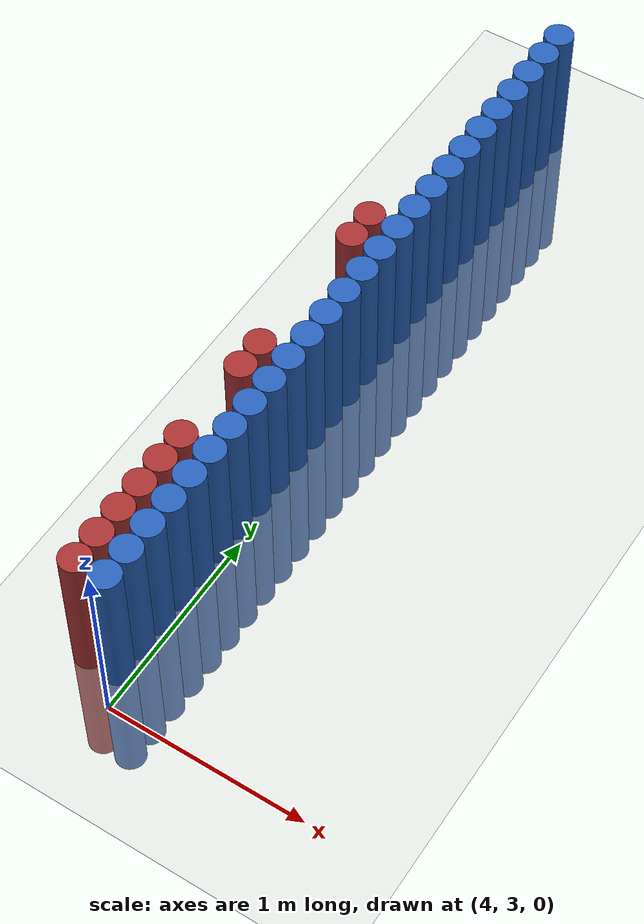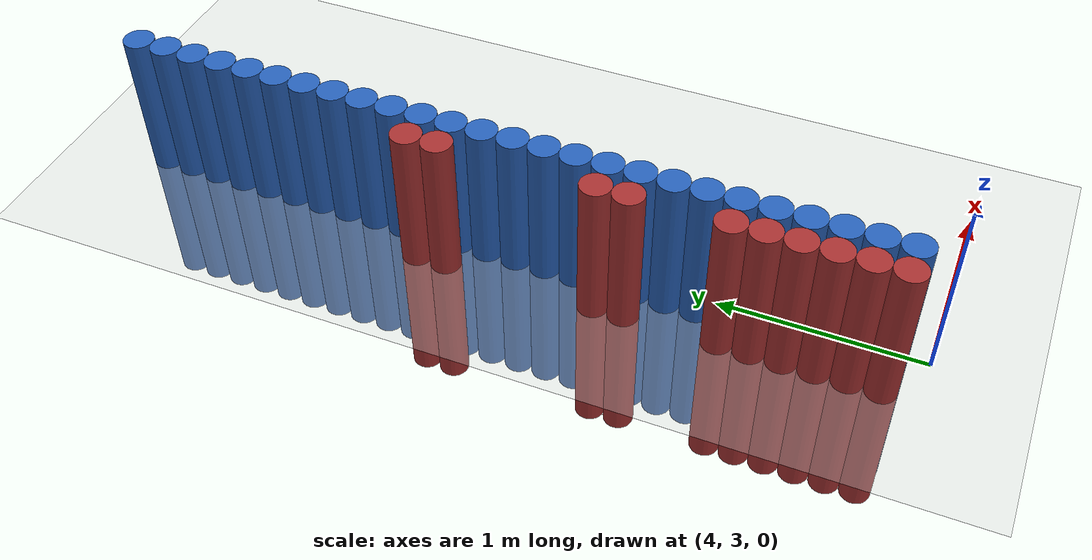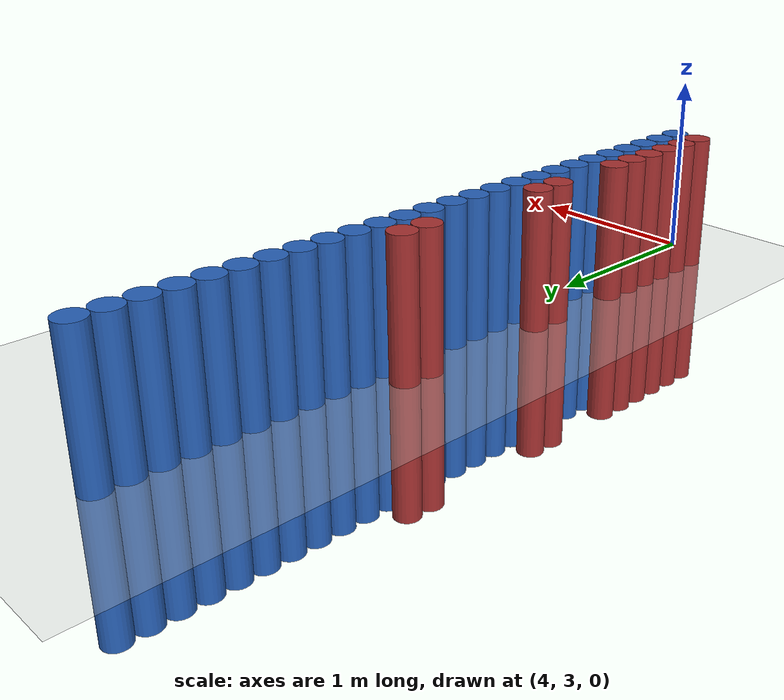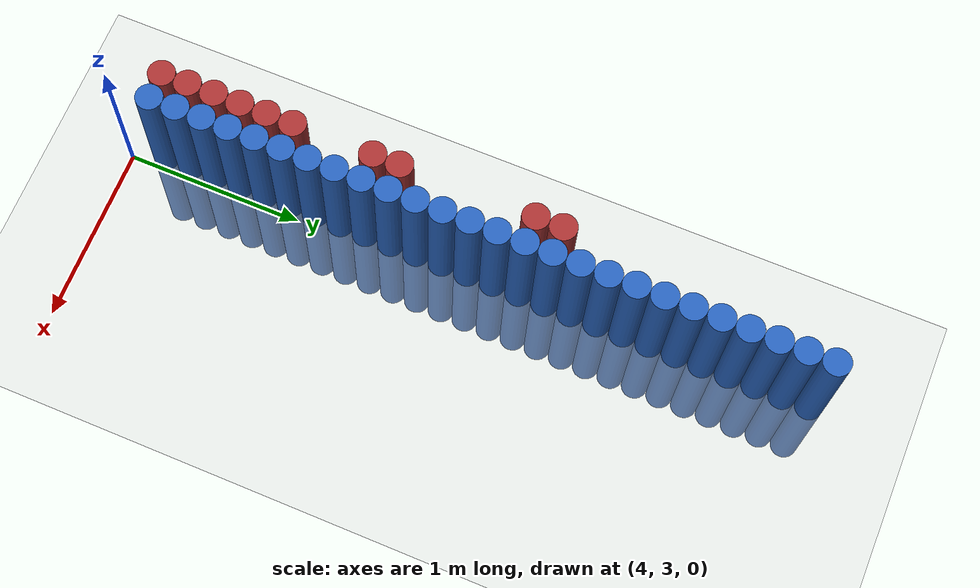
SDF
<sdf version="1.6">
 <world name="default">
  <model name="ground_plane">
   <static>1</static>
   <link name="link">
    <collision name="collision">
     <geometry><plane><normal>0 0 1</normal><size>100 100</size></plane></geometry>
     <surface><friction><ode><mu>100</mu><mu2>50</mu2></ode></friction></surface>
    </collision>
    <visual name="visual">
     <cast_shadows>0</cast_shadows>
     <geometry><plane><normal>0 0 1</normal><size>100 100</size></plane></geometry>
     <material>
      <script><uri>file://media/materials/scripts/gazebo.material</uri><name>Gazebo/Grey</name></script>
     </material>
    </visual>
   </link>
  </model>
  <model name="unit_cylinder_156">
   <static>1</static>
   <pose>3.925000 3.175000 0.000000 0.000000 0.000000 0.000000</pose>
   <link name="link">
    <inertial>
     <mass>1</mass>
     <inertia><ixx>0.145833</ixx><ixy>0</ixy><ixz>0</ixz><iyy>0.145833</iyy><iyz>0</iyz><izz>0.125</izz></inertia>
    </inertial>
    <collision name="collision">
     <geometry><cylinder><radius>0.075000</radius><length>1.5</length></cylinder></geometry>
    </collision>
    <visual name="visual">
     <geometry><cylinder><radius>0.075000</radius><length>1.5</length></cylinder></geometry>
     <material>
      <ambient>0.152000 0.379000 0.720000 1</ambient>
      <diffuse>0.152000 0.379000 0.720000 1</diffuse>
     </material>
     <material>
      <script><name>Gazebo/Grey</name><uri>file://media/materials/scripts/gazebo.material</uri></script>
     </material>
    </visual>
   </link>
  </model>
  <model name="unit_cylinder_158">
   <static>1</static>
   <pose>3.925000 3.325000 0.000000 0.000000 0.000000 0.000000</pose>
   <link name="link">
    <inertial>
     <mass>1</mass>
     <inertia><ixx>0.145833</ixx><ixy>0</ixy><ixz>0</ixz><iyy>0.145833</iyy><iyz>0</iyz><izz>0.125</izz></inertia>
    </inertial>
    <collision name="collision">
     <geometry><cylinder><radius>0.075000</radius><length>1.5</length></cylinder></geometry>
    </collision>
    <visual name="visual">
     <geometry><cylinder><radius>0.075000</radius><length>1.5</length></cylinder></geometry>
     <material>
      <ambient>0.152000 0.379000 0.720000 1</ambient>
      <diffuse>0.152000 0.379000 0.720000 1</diffuse>
     </material>
     <material>
      <script><name>Gazebo/Grey</name><uri>file://media/materials/scripts/gazebo.material</uri></script>
     </material>
    </visual>
   </link>
  </model>
  <model name="unit_cylinder_160">
   <static>1</static>
   <pose>3.925000 3.475000 0.000000 0.000000 0.000000 0.000000</pose>
   <link name="link">
    <inertial>
     <mass>1</mass>
     <inertia><ixx>0.145833</ixx><ixy>0</ixy><ixz>0</ixz><iyy>0.145833</iyy><iyz>0</iyz><izz>0.125</izz></inertia>
    </inertial>
    <collision name="collision">
     <geometry><cylinder><radius>0.075000</radius><length>1.5</length></cylinder></geometry>
    </collision>
    <visual name="visual">
     <geometry><cylinder><radius>0.075000</radius><length>1.5</length></cylinder></geometry>
     <material>
      <ambient>0.152000 0.379000 0.720000 1</ambient>
      <diffuse>0.152000 0.379000 0.720000 1</diffuse>
     </material>
     <material>
      <script><name>Gazebo/Grey</name><uri>file://media/materials/scripts/gazebo.material</uri></script>
     </material>
    </visual>
   </link>
  </model>
  <model name="unit_cylinder_162">
   <static>1</static>
   <pose>3.925000 3.625000 0.000000 0.000000 0.000000 0.000000</pose>
   <link name="link">
    <inertial>
     <mass>1</mass>
     <inertia><ixx>0.145833</ixx><ixy>0</ixy><ixz>0</ixz><iyy>0.145833</iyy><iyz>0</iyz><izz>0.125</izz></inertia>
    </inertial>
    <collision name="collision">
     <geometry><cylinder><radius>0.075000</radius><length>1.5</length></cylinder></geometry>
    </collision>
    <visual name="visual">
     <geometry><cylinder><radius>0.075000</radius><length>1.5</length></cylinder></geometry>
     <material>
      <ambient>0.152000 0.379000 0.720000 1</ambient>
      <diffuse>0.152000 0.379000 0.720000 1</diffuse>
     </material>
     <material>
      <script><name>Gazebo/Grey</name><uri>file://media/materials/scripts/gazebo.material</uri></script>
     </material>
    </visual>
   </link>
  </model>
  <model name="unit_cylinder_164">
   <static>1</static>
   <pose>3.925000 3.775000 0.000000 0.000000 0.000000 0.000000</pose>
   <link name="link">
    <inertial>
     <mass>1</mass>
     <inertia><ixx>0.145833</ixx><ixy>0</ixy><ixz>0</ixz><iyy>0.145833</iyy><iyz>0</iyz><izz>0.125</izz></inertia>
    </inertial>
    <collision name="collision">
     <geometry><cylinder><radius>0.075000</radius><length>1.5</length></cylinder></geometry>
    </collision>
    <visual name="visual">
     <geometry><cylinder><radius>0.075000</radius><length>1.5</length></cylinder></geometry>
     <material>
      <ambient>0.152000 0.379000 0.720000 1</ambient>
      <diffuse>0.152000 0.379000 0.720000 1</diffuse>
     </material>
     <material>
      <script><name>Gazebo/Grey</name><uri>file://media/materials/scripts/gazebo.material</uri></script>
     </material>
    </visual>
   </link>
  </model>
  <model name="unit_cylinder_166">
   <static>1</static>
   <pose>3.925000 3.925000 0.000000 0.000000 0.000000 0.000000</pose>
   <link name="link">
    <inertial>
     <mass>1</mass>
     <inertia><ixx>0.145833</ixx><ixy>0</ixy><ixz>0</ixz><iyy>0.145833</iyy><iyz>0</iyz><izz>0.125</izz></inertia>
    </inertial>
    <collision name="collision">
     <geometry><cylinder><radius>0.075000</radius><length>1.5</length></cylinder></geometry>
    </collision>
    <visual name="visual">
     <geometry><cylinder><radius>0.075000</radius><length>1.5</length></cylinder></geometry>
     <material>
      <ambient>0.152000 0.379000 0.720000 1</ambient>
      <diffuse>0.152000 0.379000 0.720000 1</diffuse>
     </material>
     <material>
      <script><name>Gazebo/Grey</name><uri>file://media/materials/scripts/gazebo.material</uri></script>
     </material>
    </visual>
   </link>
  </model>
  <model name="unit_cylinder_168">
   <static>1</static>
   <pose>3.925000 4.075000 0.000000 0.000000 0.000000 0.000000</pose>
   <link name="link">
    <inertial>
     <mass>1</mass>
     <inertia><ixx>0.145833</ixx><ixy>0</ixy><ixz>0</ixz><iyy>0.145833</iyy><iyz>0</iyz><izz>0.125</izz></inertia>
    </inertial>
    <collision name="collision">
     <geometry><cylinder><radius>0.075000</radius><length>1.5</length></cylinder></geometry>
    </collision>
    <visual name="visual">
     <geometry><cylinder><radius>0.075000</radius><length>1.5</length></cylinder></geometry>
     <material>
      <ambient>0.152000 0.379000 0.720000 1</ambient>
      <diffuse>0.152000 0.379000 0.720000 1</diffuse>
     </material>
     <material>
      <script><name>Gazebo/Grey</name><uri>file://media/materials/scripts/gazebo.material</uri></script>
     </material>
    </visual>
   </link>
  </model>
  <model name="unit_cylinder_170">
   <static>1</static>
   <pose>3.925000 4.225000 0.000000 0.000000 0.000000 0.000000</pose>
   <link name="link">
    <inertial>
     <mass>1</mass>
     <inertia><ixx>0.145833</ixx><ixy>0</ixy><ixz>0</ixz><iyy>0.145833</iyy><iyz>0</iyz><izz>0.125</izz></inertia>
    </inertial>
    <collision name="collision">
     <geometry><cylinder><radius>0.075000</radius><length>1.5</length></cylinder></geometry>
    </collision>
    <visual name="visual">
     <geometry><cylinder><radius>0.075000</radius><length>1.5</length></cylinder></geometry>
     <material>
      <ambient>0.152000 0.379000 0.720000 1</ambient>
      <diffuse>0.152000 0.379000 0.720000 1</diffuse>
     </material>
     <material>
      <script><name>Gazebo/Grey</name><uri>file://media/materials/scripts/gazebo.material</uri></script>
     </material>
    </visual>
   </link>
  </model>
  <model name="unit_cylinder_172">
   <static>1</static>
   <pose>3.925000 4.375000 0.000000 0.000000 0.000000 0.000000</pose>
   <link name="link">
    <inertial>
     <mass>1</mass>
     <inertia><ixx>0.145833</ixx><ixy>0</ixy><ixz>0</ixz><iyy>0.145833</iyy><iyz>0</iyz><izz>0.125</izz></inertia>
    </inertial>
    <collision name="collision">
     <geometry><cylinder><radius>0.075000</radius><length>1.5</length></cylinder></geometry>
    </collision>
    <visual name="visual">
     <geometry><cylinder><radius>0.075000</radius><length>1.5</length></cylinder></geometry>
     <material>
      <ambient>0.152000 0.379000 0.720000 1</ambient>
      <diffuse>0.152000 0.379000 0.720000 1</diffuse>
     </material>
     <material>
      <script><name>Gazebo/Grey</name><uri>file://media/materials/scripts/gazebo.material</uri></script>
     </material>
    </visual>
   </link>
  </model>
  <model name="unit_cylinder_174">
   <static>1</static>
   <pose>3.925000 4.525000 0.000000 0.000000 0.000000 0.000000</pose>
   <link name="link">
    <inertial>
     <mass>1</mass>
     <inertia><ixx>0.145833</ixx><ixy>0</ixy><ixz>0</ixz><iyy>0.145833</iyy><iyz>0</iyz><izz>0.125</izz></inertia>
    </inertial>
    <collision name="collision">
     <geometry><cylinder><radius>0.075000</radius><length>1.5</length></cylinder></geometry>
    </collision>
    <visual name="visual">
     <geometry><cylinder><radius>0.075000</radius><length>1.5</length></cylinder></geometry>
     <material>
      <ambient>0.152000 0.379000 0.720000 1</ambient>
      <diffuse>0.152000 0.379000 0.720000 1</diffuse>
     </material>
     <material>
      <script><name>Gazebo/Grey</name><uri>file://media/materials/scripts/gazebo.material</uri></script>
     </material>
    </visual>
   </link>
  </model>
  <model name="unit_cylinder_176">
   <static>1</static>
   <pose>3.925000 4.675000 0.000000 0.000000 0.000000 0.000000</pose>
   <link name="link">
    <inertial>
     <mass>1</mass>
     <inertia><ixx>0.145833</ixx><ixy>0</ixy><ixz>0</ixz><iyy>0.145833</iyy><iyz>0</iyz><izz>0.125</izz></inertia>
    </inertial>
    <collision name="collision">
     <geometry><cylinder><radius>0.075000</radius><length>1.5</length></cylinder></geometry>
    </collision>
    <visual name="visual">
     <geometry><cylinder><radius>0.075000</radius><length>1.5</length></cylinder></geometry>
     <material>
      <ambient>0.152000 0.379000 0.720000 1</ambient>
      <diffuse>0.152000 0.379000 0.720000 1</diffuse>
     </material>
     <material>
      <script><name>Gazebo/Grey</name><uri>file://media/materials/scripts/gazebo.material</uri></script>
     </material>
    </visual>
   </link>
  </model>
  <model name="unit_cylinder_178">
   <static>1</static>
   <pose>3.925000 4.825000 0.000000 0.000000 0.000000 0.000000</pose>
   <link name="link">
    <inertial>
     <mass>1</mass>
     <inertia><ixx>0.145833</ixx><ixy>0</ixy><ixz>0</ixz><iyy>0.145833</iyy><iyz>0</iyz><izz>0.125</izz></inertia>
    </inertial>
    <collision name="collision">
     <geometry><cylinder><radius>0.075000</radius><length>1.5</length></cylinder></geometry>
    </collision>
    <visual name="visual">
     <geometry><cylinder><radius>0.075000</radius><length>1.5</length></cylinder></geometry>
     <material>
      <ambient>0.152000 0.379000 0.720000 1</ambient>
      <diffuse>0.152000 0.379000 0.720000 1</diffuse>
     </material>
     <material>
      <script><name>Gazebo/Grey</name><uri>file://media/materials/scripts/gazebo.material</uri></script>
     </material>
    </visual>
   </link>
  </model>
  <model name="unit_cylinder_180">
   <static>1</static>
   <pose>3.925000 4.975000 0.000000 0.000000 0.000000 0.000000</pose>
   <link name="link">
    <inertial>
     <mass>1</mass>
     <inertia><ixx>0.145833</ixx><ixy>0</ixy><ixz>0</ixz><iyy>0.145833</iyy><iyz>0</iyz><izz>0.125</izz></inertia>
    </inertial>
    <collision name="collision">
     <geometry><cylinder><radius>0.075000</radius><length>1.5</length></cylinder></geometry>
    </collision>
    <visual name="visual">
     <geometry><cylinder><radius>0.075000</radius><length>1.5</length></cylinder></geometry>
     <material>
      <ambient>0.152000 0.379000 0.720000 1</ambient>
      <diffuse>0.152000 0.379000 0.720000 1</diffuse>
     </material>
     <material>
      <script><name>Gazebo/Grey</name><uri>file://media/materials/scripts/gazebo.material</uri></script>
     </material>
    </visual>
   </link>
  </model>
  <model name="unit_cylinder_182">
   <static>1</static>
   <pose>3.925000 5.125000 0.000000 0.000000 0.000000 0.000000</pose>
   <link name="link">
    <inertial>
     <mass>1</mass>
     <inertia><ixx>0.145833</ixx><ixy>0</ixy><ixz>0</ixz><iyy>0.145833</iyy><iyz>0</iyz><izz>0.125</izz></inertia>
    </inertial>
    <collision name="collision">
     <geometry><cylinder><radius>0.075000</radius><length>1.5</length></cylinder></geometry>
    </collision>
    <visual name="visual">
     <geometry><cylinder><radius>0.075000</radius><length>1.5</length></cylinder></geometry>
     <material>
      <ambient>0.152000 0.379000 0.720000 1</ambient>
      <diffuse>0.152000 0.379000 0.720000 1</diffuse>
     </material>
     <material>
      <script><name>Gazebo/Grey</name><uri>file://media/materials/scripts/gazebo.material</uri></script>
     </material>
    </visual>
   </link>
  </model>
  <model name="unit_cylinder_184">
   <static>1</static>
   <pose>3.925000 5.275000 0.000000 0.000000 0.000000 0.000000</pose>
   <link name="link">
    <inertial>
     <mass>1</mass>
     <inertia><ixx>0.145833</ixx><ixy>0</ixy><ixz>0</ixz><iyy>0.145833</iyy><iyz>0</iyz><izz>0.125</izz></inertia>
    </inertial>
    <collision name="collision">
     <geometry><cylinder><radius>0.075000</radius><length>1.5</length></cylinder></geometry>
    </collision>
    <visual name="visual">
     <geometry><cylinder><radius>0.075000</radius><length>1.5</length></cylinder></geometry>
     <material>
      <ambient>0.152000 0.379000 0.720000 1</ambient>
      <diffuse>0.152000 0.379000 0.720000 1</diffuse>
     </material>
     <material>
      <script><name>Gazebo/Grey</name><uri>file://media/materials/scripts/gazebo.material</uri></script>
     </material>
    </visual>
   </link>
  </model>
  <model name="unit_cylinder_186">
   <static>1</static>
   <pose>3.925000 5.425000 0.000000 0.000000 0.000000 0.000000</pose>
   <link name="link">
    <inertial>
     <mass>1</mass>
     <inertia><ixx>0.145833</ixx><ixy>0</ixy><ixz>0</ixz><iyy>0.145833</iyy><iyz>0</iyz><izz>0.125</izz></inertia>
    </inertial>
    <collision name="collision">
     <geometry><cylinder><radius>0.075000</radius><length>1.5</length></cylinder></geometry>
    </collision>
    <visual name="visual">
     <geometry><cylinder><radius>0.075000</radius><length>1.5</length></cylinder></geometry>
     <material>
      <ambient>0.152000 0.379000 0.720000 1</ambient>
      <diffuse>0.152000 0.379000 0.720000 1</diffuse>
     </material>
     <material>
      <script><name>Gazebo/Grey</name><uri>file://media/materials/scripts/gazebo.material</uri></script>
     </material>
    </visual>
   </link>
  </model>
  <model name="unit_cylinder_188">
   <static>1</static>
   <pose>3.925000 5.575000 0.000000 0.000000 0.000000 0.000000</pose>
   <link name="link">
    <inertial>
     <mass>1</mass>
     <inertia><ixx>0.145833</ixx><ixy>0</ixy><ixz>0</ixz><iyy>0.145833</iyy><iyz>0</iyz><izz>0.125</izz></inertia>
    </inertial>
    <collision name="collision">
     <geometry><cylinder><radius>0.075000</radius><length>1.5</length></cylinder></geometry>
    </collision>
    <visual name="visual">
     <geometry><cylinder><radius>0.075000</radius><length>1.5</length></cylinder></geometry>
     <material>
      <ambient>0.152000 0.379000 0.720000 1</ambient>
      <diffuse>0.152000 0.379000 0.720000 1</diffuse>
     </material>
     <material>
      <script><name>Gazebo/Grey</name><uri>file://media/materials/scripts/gazebo.material</uri></script>
     </material>
    </visual>
   </link>
  </model>
  <model name="unit_cylinder_190">
   <static>1</static>
   <pose>3.925000 5.725000 0.000000 0.000000 0.000000 0.000000</pose>
   <link name="link">
    <inertial>
     <mass>1</mass>
     <inertia><ixx>0.145833</ixx><ixy>0</ixy><ixz>0</ixz><iyy>0.145833</iyy><iyz>0</iyz><izz>0.125</izz></inertia>
    </inertial>
    <collision name="collision">
     <geometry><cylinder><radius>0.075000</radius><length>1.5</length></cylinder></geometry>
    </collision>
    <visual name="visual">
     <geometry><cylinder><radius>0.075000</radius><length>1.5</length></cylinder></geometry>
     <material>
      <ambient>0.152000 0.379000 0.720000 1</ambient>
      <diffuse>0.152000 0.379000 0.720000 1</diffuse>
     </material>
     <material>
      <script><name>Gazebo/Grey</name><uri>file://media/materials/scripts/gazebo.material</uri></script>
     </material>
    </visual>
   </link>
  </model>
  <model name="unit_cylinder_192">
   <static>1</static>
   <pose>3.925000 5.875000 0.000000 0.000000 0.000000 0.000000</pose>
   <link name="link">
    <inertial>
     <mass>1</mass>
     <inertia><ixx>0.145833</ixx><ixy>0</ixy><ixz>0</ixz><iyy>0.145833</iyy><iyz>0</iyz><izz>0.125</izz></inertia>
    </inertial>
    <collision name="collision">
     <geometry><cylinder><radius>0.075000</radius><length>1.5</length></cylinder></geometry>
    </collision>
    <visual name="visual">
     <geometry><cylinder><radius>0.075000</radius><length>1.5</length></cylinder></geometry>
     <material>
      <ambient>0.152000 0.379000 0.720000 1</ambient>
      <diffuse>0.152000 0.379000 0.720000 1</diffuse>
     </material>
     <material>
      <script><name>Gazebo/Grey</name><uri>file://media/materials/scripts/gazebo.material</uri></script>
     </material>
    </visual>
   </link>
  </model>
  <model name="unit_cylinder_194">
   <static>1</static>
   <pose>3.925000 6.025000 0.000000 0.000000 0.000000 0.000000</pose>
   <link name="link">
    <inertial>
     <mass>1</mass>
     <inertia><ixx>0.145833</ixx><ixy>0</ixy><ixz>0</ixz><iyy>0.145833</iyy><iyz>0</iyz><izz>0.125</izz></inertia>
    </inertial>
    <collision name="collision">
     <geometry><cylinder><radius>0.075000</radius><length>1.5</length></cylinder></geometry>
    </collision>
    <visual name="visual">
     <geometry><cylinder><radius>0.075000</radius><length>1.5</length></cylinder></geometry>
     <material>
      <ambient>0.152000 0.379000 0.720000 1</ambient>
      <diffuse>0.152000 0.379000 0.720000 1</diffuse>
     </material>
     <material>
      <script><name>Gazebo/Grey</name><uri>file://media/materials/scripts/gazebo.material</uri></script>
     </material>
    </visual>
   </link>
  </model>
  <model name="unit_cylinder_196">
   <static>1</static>
   <pose>3.925000 6.175000 0.000000 0.000000 0.000000 0.000000</pose>
   <link name="link">
    <inertial>
     <mass>1</mass>
     <inertia><ixx>0.145833</ixx><ixy>0</ixy><ixz>0</ixz><iyy>0.145833</iyy><iyz>0</iyz><izz>0.125</izz></inertia>
    </inertial>
    <collision name="collision">
     <geometry><cylinder><radius>0.075000</radius><length>1.5</length></cylinder></geometry>
    </collision>
    <visual name="visual">
     <geometry><cylinder><radius>0.075000</radius><length>1.5</length></cylinder></geometry>
     <material>
      <ambient>0.152000 0.379000 0.720000 1</ambient>
      <diffuse>0.152000 0.379000 0.720000 1</diffuse>
     </material>
     <material>
      <script><name>Gazebo/Grey</name><uri>file://media/materials/scripts/gazebo.material</uri></script>
     </material>
    </visual>
   </link>
  </model>
  <model name="unit_cylinder_198">
   <static>1</static>
   <pose>3.925000 6.325000 0.000000 0.000000 0.000000 0.000000</pose>
   <link name="link">
    <inertial>
     <mass>1</mass>
     <inertia><ixx>0.145833</ixx><ixy>0</ixy><ixz>0</ixz><iyy>0.145833</iyy><iyz>0</iyz><izz>0.125</izz></inertia>
    </inertial>
    <collision name="collision">
     <geometry><cylinder><radius>0.075000</radius><length>1.5</length></cylinder></geometry>
    </collision>
    <visual name="visual">
     <geometry><cylinder><radius>0.075000</radius><length>1.5</length></cylinder></geometry>
     <material>
      <ambient>0.152000 0.379000 0.720000 1</ambient>
      <diffuse>0.152000 0.379000 0.720000 1</diffuse>
     </material>
     <material>
      <script><name>Gazebo/Grey</name><uri>file://media/materials/scripts/gazebo.material</uri></script>
     </material>
    </visual>
   </link>
  </model>
  <model name="unit_cylinder_200">
   <static>1</static>
   <pose>3.925000 6.475000 0.000000 0.000000 0.000000 0.000000</pose>
   <link name="link">
    <inertial>
     <mass>1</mass>
     <inertia><ixx>0.145833</ixx><ixy>0</ixy><ixz>0</ixz><iyy>0.145833</iyy><iyz>0</iyz><izz>0.125</izz></inertia>
    </inertial>
    <collision name="collision">
     <geometry><cylinder><radius>0.075000</radius><length>1.5</length></cylinder></geometry>
    </collision>
    <visual name="visual">
     <geometry><cylinder><radius>0.075000</radius><length>1.5</length></cylinder></geometry>
     <material>
      <ambient>0.152000 0.379000 0.720000 1</ambient>
      <diffuse>0.152000 0.379000 0.720000 1</diffuse>
     </material>
     <material>
      <script><name>Gazebo/Grey</name><uri>file://media/materials/scripts/gazebo.material</uri></script>
     </material>
    </visual>
   </link>
  </model>
  <model name="unit_cylinder_202">
   <static>1</static>
   <pose>3.925000 6.625000 0.000000 0.000000 0.000000 0.000000</pose>
   <link name="link">
    <inertial>
     <mass>1</mass>
     <inertia><ixx>0.145833</ixx><ixy>0</ixy><ixz>0</ixz><iyy>0.145833</iyy><iyz>0</iyz><izz>0.125</izz></inertia>
    </inertial>
    <collision name="collision">
     <geometry><cylinder><radius>0.075000</radius><length>1.5</length></cylinder></geometry>
    </collision>
    <visual name="visual">
     <geometry><cylinder><radius>0.075000</radius><length>1.5</length></cylinder></geometry>
     <material>
      <ambient>0.152000 0.379000 0.720000 1</ambient>
      <diffuse>0.152000 0.379000 0.720000 1</diffuse>
     </material>
     <material>
      <script><name>Gazebo/Grey</name><uri>file://media/materials/scripts/gazebo.material</uri></script>
     </material>
    </visual>
   </link>
  </model>
  <model name="unit_cylinder_204">
   <static>1</static>
   <pose>3.925000 6.775000 0.000000 0.000000 0.000000 0.000000</pose>
   <link name="link">
    <inertial>
     <mass>1</mass>
     <inertia><ixx>0.145833</ixx><ixy>0</ixy><ixz>0</ixz><iyy>0.145833</iyy><iyz>0</iyz><izz>0.125</izz></inertia>
    </inertial>
    <collision name="collision">
     <geometry><cylinder><radius>0.075000</radius><length>1.5</length></cylinder></geometry>
    </collision>
    <visual name="visual">
     <geometry><cylinder><radius>0.075000</radius><length>1.5</length></cylinder></geometry>
     <material>
      <ambient>0.152000 0.379000 0.720000 1</ambient>
      <diffuse>0.152000 0.379000 0.720000 1</diffuse>
     </material>
     <material>
      <script><name>Gazebo/Grey</name><uri>file://media/materials/scripts/gazebo.material</uri></script>
     </material>
    </visual>
   </link>
  </model>
  <model name="unit_cylinder_206">
   <static>1</static>
   <pose>3.925000 6.925000 0.000000 0.000000 0.000000 0.000000</pose>
   <link name="link">
    <inertial>
     <mass>1</mass>
     <inertia><ixx>0.145833</ixx><ixy>0</ixy><ixz>0</ixz><iyy>0.145833</iyy><iyz>0</iyz><izz>0.125</izz></inertia>
    </inertial>
    <collision name="collision">
     <geometry><cylinder><radius>0.075000</radius><length>1.5</length></cylinder></geometry>
    </collision>
    <visual name="visual">
     <geometry><cylinder><radius>0.075000</radius><length>1.5</length></cylinder></geometry>
     <material>
      <ambient>0.152000 0.379000 0.720000 1</ambient>
      <diffuse>0.152000 0.379000 0.720000 1</diffuse>
     </material>
     <material>
      <script><name>Gazebo/Grey</name><uri>file://media/materials/scripts/gazebo.material</uri></script>
     </material>
    </visual>
   </link>
  </model>
  <model name="unit_cylinder_556">
   <static>1</static>
   <pose>3.775000 3.175000 0.000000 0.000000 0.000000 0.000000</pose>
   <link name="link">
    <inertial>
     <mass>1</mass>
     <inertia><ixx>0.145833</ixx><ixy>0</ixy><ixz>0</ixz><iyy>0.145833</iyy><iyz>0</iyz><izz>0.125</izz></inertia>
    </inertial>
    <collision name="collision">
     <geometry><cylinder><radius>0.075000</radius><length>1.5</length></cylinder></geometry>
    </collision>
    <visual name="visual">
     <geometry><cylinder><radius>0.075000</radius><length>1.5</length></cylinder></geometry>
     <material>
      <ambient>0.648000 0.192000 0.192000 1</ambient>
      <diffuse>0.648000 0.192000 0.192000 1</diffuse>
     </material>
     <material>
      <script><name>Gazebo/Grey</name><uri>file://media/materials/scripts/gazebo.material</uri></script>
     </material>
    </visual>
   </link>
  </model>
  <model name="unit_cylinder_557">
   <static>1</static>
   <pose>3.775000 3.325000 0.000000 0.000000 0.000000 0.000000</pose>
   <link name="link">
    <inertial>
     <mass>1</mass>
     <inertia><ixx>0.145833</ixx><ixy>0</ixy><ixz>0</ixz><iyy>0.145833</iyy><iyz>0</iyz><izz>0.125</izz></inertia>
    </inertial>
    <collision name="collision">
     <geometry><cylinder><radius>0.075000</radius><length>1.5</length></cylinder></geometry>
    </collision>
    <visual name="visual">
     <geometry><cylinder><radius>0.075000</radius><length>1.5</length></cylinder></geometry>
     <material>
      <ambient>0.648000 0.192000 0.192000 1</ambient>
      <diffuse>0.648000 0.192000 0.192000 1</diffuse>
     </material>
     <material>
      <script><name>Gazebo/Grey</name><uri>file://media/materials/scripts/gazebo.material</uri></script>
     </material>
    </visual>
   </link>
  </model>
  <model name="unit_cylinder_558">
   <static>1</static>
   <pose>3.775000 3.475000 0.000000 0.000000 0.000000 0.000000</pose>
   <link name="link">
    <inertial>
     <mass>1</mass>
     <inertia><ixx>0.145833</ixx><ixy>0</ixy><ixz>0</ixz><iyy>0.145833</iyy><iyz>0</iyz><izz>0.125</izz></inertia>
    </inertial>
    <collision name="collision">
     <geometry><cylinder><radius>0.075000</radius><length>1.5</length></cylinder></geometry>
    </collision>
    <visual name="visual">
     <geometry><cylinder><radius>0.075000</radius><length>1.5</length></cylinder></geometry>
     <material>
      <ambient>0.648000 0.192000 0.192000 1</ambient>
      <diffuse>0.648000 0.192000 0.192000 1</diffuse>
     </material>
     <material>
      <script><name>Gazebo/Grey</name><uri>file://media/materials/scripts/gazebo.material</uri></script>
     </material>
    </visual>
   </link>
  </model>
  <model name="unit_cylinder_559">
   <static>1</static>
   <pose>3.775000 3.625000 0.000000 0.000000 0.000000 0.000000</pose>
   <link name="link">
    <inertial>
     <mass>1</mass>
     <inertia><ixx>0.145833</ixx><ixy>0</ixy><ixz>0</ixz><iyy>0.145833</iyy><iyz>0</iyz><izz>0.125</izz></inertia>
    </inertial>
    <collision name="collision">
     <geometry><cylinder><radius>0.075000</radius><length>1.5</length></cylinder></geometry>
    </collision>
    <visual name="visual">
     <geometry><cylinder><radius>0.075000</radius><length>1.5</length></cylinder></geometry>
     <material>
      <ambient>0.648000 0.192000 0.192000 1</ambient>
      <diffuse>0.648000 0.192000 0.192000 1</diffuse>
     </material>
     <material>
      <script><name>Gazebo/Grey</name><uri>file://media/materials/scripts/gazebo.material</uri></script>
     </material>
    </visual>
   </link>
  </model>
  <model name="unit_cylinder_560">
   <static>1</static>
   <pose>3.775000 3.775000 0.000000 0.000000 0.000000 0.000000</pose>
   <link name="link">
    <inertial>
     <mass>1</mass>
     <inertia><ixx>0.145833</ixx><ixy>0</ixy><ixz>0</ixz><iyy>0.145833</iyy><iyz>0</iyz><izz>0.125</izz></inertia>
    </inertial>
    <collision name="collision">
     <geometry><cylinder><radius>0.075000</radius><length>1.5</length></cylinder></geometry>
    </collision>
    <visual name="visual">
     <geometry><cylinder><radius>0.075000</radius><length>1.5</length></cylinder></geometry>
     <material>
      <ambient>0.648000 0.192000 0.192000 1</ambient>
      <diffuse>0.648000 0.192000 0.192000 1</diffuse>
     </material>
     <material>
      <script><name>Gazebo/Grey</name><uri>file://media/materials/scripts/gazebo.material</uri></script>
     </material>
    </visual>
   </link>
  </model>
  <model name="unit_cylinder_561">
   <static>1</static>
   <pose>3.775000 3.925000 0.000000 0.000000 0.000000 0.000000</pose>
   <link name="link">
    <inertial>
     <mass>1</mass>
     <inertia><ixx>0.145833</ixx><ixy>0</ixy><ixz>0</ixz><iyy>0.145833</iyy><iyz>0</iyz><izz>0.125</izz></inertia>
    </inertial>
    <collision name="collision">
     <geometry><cylinder><radius>0.075000</radius><length>1.5</length></cylinder></geometry>
    </collision>
    <visual name="visual">
     <geometry><cylinder><radius>0.075000</radius><length>1.5</length></cylinder></geometry>
     <material>
      <ambient>0.648000 0.192000 0.192000 1</ambient>
      <diffuse>0.648000 0.192000 0.192000 1</diffuse>
     </material>
     <material>
      <script><name>Gazebo/Grey</name><uri>file://media/materials/scripts/gazebo.material</uri></script>
     </material>
    </visual>
   </link>
  </model>
  <model name="unit_cylinder_562">
   <static>1</static>
   <pose>3.775000 4.375000 0.000000 0.000000 0.000000 0.000000</pose>
   <link name="link">
    <inertial>
     <mass>1</mass>
     <inertia><ixx>0.145833</ixx><ixy>0</ixy><ixz>0</ixz><iyy>0.145833</iyy><iyz>0</iyz><izz>0.125</izz></inertia>
    </inertial>
    <collision name="collision">
     <geometry><cylinder><radius>0.075000</radius><length>1.5</length></cylinder></geometry>
    </collision>
    <visual name="visual">
     <geometry><cylinder><radius>0.075000</radius><length>1.5</length></cylinder></geometry>
     <material>
      <ambient>0.648000 0.192000 0.192000 1</ambient>
      <diffuse>0.648000 0.192000 0.192000 1</diffuse>
     </material>
     <material>
      <script><name>Gazebo/Grey</name><uri>file://media/materials/scripts/gazebo.material</uri></script>
     </material>
    </visual>
   </link>
  </model>
  <model name="unit_cylinder_563">
   <static>1</static>
   <pose>3.775000 4.525000 0.000000 0.000000 0.000000 0.000000</pose>
   <link name="link">
    <inertial>
     <mass>1</mass>
     <inertia><ixx>0.145833</ixx><ixy>0</ixy><ixz>0</ixz><iyy>0.145833</iyy><iyz>0</iyz><izz>0.125</izz></inertia>
    </inertial>
    <collision name="collision">
     <geometry><cylinder><radius>0.075000</radius><length>1.5</length></cylinder></geometry>
    </collision>
    <visual name="visual">
     <geometry><cylinder><radius>0.075000</radius><length>1.5</length></cylinder></geometry>
     <material>
      <ambient>0.648000 0.192000 0.192000 1</ambient>
      <diffuse>0.648000 0.192000 0.192000 1</diffuse>
     </material>
     <material>
      <script><name>Gazebo/Grey</name><uri>file://media/materials/scripts/gazebo.material</uri></script>
     </material>
    </visual>
   </link>
  </model>
  <model name="unit_cylinder_564">
   <static>1</static>
   <pose>3.775000 5.275000 0.000000 0.000000 0.000000 0.000000</pose>
   <link name="link">
    <inertial>
     <mass>1</mass>
     <inertia><ixx>0.145833</ixx><ixy>0</ixy><ixz>0</ixz><iyy>0.145833</iyy><iyz>0</iyz><izz>0.125</izz></inertia>
    </inertial>
    <collision name="collision">
     <geometry><cylinder><radius>0.075000</radius><length>1.5</length></cylinder></geometry>
    </collision>
    <visual name="visual">
     <geometry><cylinder><radius>0.075000</radius><length>1.5</length></cylinder></geometry>
     <material>
      <ambient>0.648000 0.192000 0.192000 1</ambient>
      <diffuse>0.648000 0.192000 0.192000 1</diffuse>
     </material>
     <material>
      <script><name>Gazebo/Grey</name><uri>file://media/materials/scripts/gazebo.material</uri></script>
     </material>
    </visual>
   </link>
  </model>
  <model name="unit_cylinder_565">
   <static>1</static>
   <pose>3.775000 5.425000 0.000000 0.000000 0.000000 0.000000</pose>
   <link name="link">
    <inertial>
     <mass>1</mass>
     <inertia><ixx>0.145833</ixx><ixy>0</ixy><ixz>0</ixz><iyy>0.145833</iyy><iyz>0</iyz><izz>0.125</izz></inertia>
    </inertial>
    <collision name="collision">
     <geometry><cylinder><radius>0.075000</radius><length>1.5</length></cylinder></geometry>
    </collision>
    <visual name="visual">
     <geometry><cylinder><radius>0.075000</radius><length>1.5</length></cylinder></geometry>
     <material>
      <ambient>0.648000 0.192000 0.192000 1</ambient>
      <diffuse>0.648000 0.192000 0.192000 1</diffuse>
     </material>
     <material>
      <script><name>Gazebo/Grey</name><uri>file://media/materials/scripts/gazebo.material</uri></script>
     </material>
    </visual>
   </link>
  </model>
  <model name="unit_cylinder_600">
   <static>1</static>
   <pose>3.925000 3.175000 0.000000 0.000000 0.000000 0.000000</pose>
   <link name="link">
    <inertial>
     <mass>1</mass>
     <inertia><ixx>0.145833</ixx><ixy>0</ixy><ixz>0</ixz><iyy>0.145833</iyy><iyz>0</iyz><izz>0.125</izz></inertia>
    </inertial>
    <collision name="collision">
     <geometry><cylinder><radius>0.075000</radius><length>1.5</length></cylinder></geometry>
    </collision>
    <visual name="visual">
     <geometry><cylinder><radius>0.075000</radius><length>1.5</length></cylinder></geometry>
     <material>
      <ambient>0.152000 0.379000 0.720000 1</ambient>
      <diffuse>0.152000 0.379000 0.720000 1</diffuse>
     </material>
     <material>
      <script><name>Gazebo/Grey</name><uri>file://media/materials/scripts/gazebo.material</uri></script>
     </material>
    </visual>
   </link>
  </model>
  <model name="unit_cylinder_601">
   <static>1</static>
   <pose>3.925000 3.325000 0.000000 0.000000 0.000000 0.000000</pose>
   <link name="link">
    <inertial>
     <mass>1</mass>
     <inertia><ixx>0.145833</ixx><ixy>0</ixy><ixz>0</ixz><iyy>0.145833</iyy><iyz>0</iyz><izz>0.125</izz></inertia>
    </inertial>
    <collision name="collision">
     <geometry><cylinder><radius>0.075000</radius><length>1.5</length></cylinder></geometry>
    </collision>
    <visual name="visual">
     <geometry><cylinder><radius>0.075000</radius><length>1.5</length></cylinder></geometry>
     <material>
      <ambient>0.152000 0.379000 0.720000 1</ambient>
      <diffuse>0.152000 0.379000 0.720000 1</diffuse>
     </material>
     <material>
      <script><name>Gazebo/Grey</name><uri>file://media/materials/scripts/gazebo.material</uri></script>
     </material>
    </visual>
   </link>
  </model>
  <model name="unit_cylinder_602">
   <static>1</static>
   <pose>3.925000 3.475000 0.000000 0.000000 0.000000 0.000000</pose>
   <link name="link">
    <inertial>
     <mass>1</mass>
     <inertia><ixx>0.145833</ixx><ixy>0</ixy><ixz>0</ixz><iyy>0.145833</iyy><iyz>0</iyz><izz>0.125</izz></inertia>
    </inertial>
    <collision name="collision">
     <geometry><cylinder><radius>0.075000</radius><length>1.5</length></cylinder></geometry>
    </collision>
    <visual name="visual">
     <geometry><cylinder><radius>0.075000</radius><length>1.5</length></cylinder></geometry>
     <material>
      <ambient>0.152000 0.379000 0.720000 1</ambient>
      <diffuse>0.152000 0.379000 0.720000 1</diffuse>
     </material>
     <material>
      <script><name>Gazebo/Grey</name><uri>file://media/materials/scripts/gazebo.material</uri></script>
     </material>
    </visual>
   </link>
  </model>
  <model name="unit_cylinder_603">
   <static>1</static>
   <pose>3.925000 3.625000 0.000000 0.000000 0.000000 0.000000</pose>
   <link name="link">
    <inertial>
     <mass>1</mass>
     <inertia><ixx>0.145833</ixx><ixy>0</ixy><ixz>0</ixz><iyy>0.145833</iyy><iyz>0</iyz><izz>0.125</izz></inertia>
    </inertial>
    <collision name="collision">
     <geometry><cylinder><radius>0.075000</radius><length>1.5</length></cylinder></geometry>
    </collision>
    <visual name="visual">
     <geometry><cylinder><radius>0.075000</radius><length>1.5</length></cylinder></geometry>
     <material>
      <ambient>0.152000 0.379000 0.720000 1</ambient>
      <diffuse>0.152000 0.379000 0.720000 1</diffuse>
     </material>
     <material>
      <script><name>Gazebo/Grey</name><uri>file://media/materials/scripts/gazebo.material</uri></script>
     </material>
    </visual>
   </link>
  </model>
  <model name="unit_cylinder_604">
   <static>1</static>
   <pose>3.925000 3.775000 0.000000 0.000000 0.000000 0.000000</pose>
   <link name="link">
    <inertial>
     <mass>1</mass>
     <inertia><ixx>0.145833</ixx><ixy>0</ixy><ixz>0</ixz><iyy>0.145833</iyy><iyz>0</iyz><izz>0.125</izz></inertia>
    </inertial>
    <collision name="collision">
     <geometry><cylinder><radius>0.075000</radius><length>1.5</length></cylinder></geometry>
    </collision>
    <visual name="visual">
     <geometry><cylinder><radius>0.075000</radius><length>1.5</length></cylinder></geometry>
     <material>
      <ambient>0.152000 0.379000 0.720000 1</ambient>
      <diffuse>0.152000 0.379000 0.720000 1</diffuse>
     </material>
     <material>
      <script><name>Gazebo/Grey</name><uri>file://media/materials/scripts/gazebo.material</uri></script>
     </material>
    </visual>
   </link>
  </model>
  <model name="unit_cylinder_605">
   <static>1</static>
   <pose>3.925000 3.925000 0.000000 0.000000 0.000000 0.000000</pose>
   <link name="link">
    <inertial>
     <mass>1</mass>
     <inertia><ixx>0.145833</ixx><ixy>0</ixy><ixz>0</ixz><iyy>0.145833</iyy><iyz>0</iyz><izz>0.125</izz></inertia>
    </inertial>
    <collision name="collision">
     <geometry><cylinder><radius>0.075000</radius><length>1.5</length></cylinder></geometry>
    </collision>
    <visual name="visual">
     <geometry><cylinder><radius>0.075000</radius><length>1.5</length></cylinder></geometry>
     <material>
      <ambient>0.152000 0.379000 0.720000 1</ambient>
      <diffuse>0.152000 0.379000 0.720000 1</diffuse>
     </material>
     <material>
      <script><name>Gazebo/Grey</name><uri>file://media/materials/scripts/gazebo.material</uri></script>
     </material>
    </visual>
   </link>
  </model>
  <model name="unit_cylinder_606">
   <static>1</static>
   <pose>3.925000 4.075000 0.000000 0.000000 0.000000 0.000000</pose>
   <link name="link">
    <inertial>
     <mass>1</mass>
     <inertia><ixx>0.145833</ixx><ixy>0</ixy><ixz>0</ixz><iyy>0.145833</iyy><iyz>0</iyz><izz>0.125</izz></inertia>
    </inertial>
    <collision name="collision">
     <geometry><cylinder><radius>0.075000</radius><length>1.5</length></cylinder></geometry>
    </collision>
    <visual name="visual">
     <geometry><cylinder><radius>0.075000</radius><length>1.5</length></cylinder></geometry>
     <material>
      <ambient>0.152000 0.379000 0.720000 1</ambient>
      <diffuse>0.152000 0.379000 0.720000 1</diffuse>
     </material>
     <material>
      <script><name>Gazebo/Grey</name><uri>file://media/materials/scripts/gazebo.material</uri></script>
     </material>
    </visual>
   </link>
  </model>
  <model name="unit_cylinder_607">
   <static>1</static>
   <pose>3.925000 4.225000 0.000000 0.000000 0.000000 0.000000</pose>
   <link name="link">
    <inertial>
     <mass>1</mass>
     <inertia><ixx>0.145833</ixx><ixy>0</ixy><ixz>0</ixz><iyy>0.145833</iyy><iyz>0</iyz><izz>0.125</izz></inertia>
    </inertial>
    <collision name="collision">
     <geometry><cylinder><radius>0.075000</radius><length>1.5</length></cylinder></geometry>
    </collision>
    <visual name="visual">
     <geometry><cylinder><radius>0.075000</radius><length>1.5</length></cylinder></geometry>
     <material>
      <ambient>0.152000 0.379000 0.720000 1</ambient>
      <diffuse>0.152000 0.379000 0.720000 1</diffuse>
     </material>
     <material>
      <script><name>Gazebo/Grey</name><uri>file://media/materials/scripts/gazebo.material</uri></script>
     </material>
    </visual>
   </link>
  </model>
  <model name="unit_cylinder_608">
   <static>1</static>
   <pose>3.925000 4.375000 0.000000 0.000000 0.000000 0.000000</pose>
   <link name="link">
    <inertial>
     <mass>1</mass>
     <inertia><ixx>0.145833</ixx><ixy>0</ixy><ixz>0</ixz><iyy>0.145833</iyy><iyz>0</iyz><izz>0.125</izz></inertia>
    </inertial>
    <collision name="collision">
     <geometry><cylinder><radius>0.075000</radius><length>1.5</length></cylinder></geometry>
    </collision>
    <visual name="visual">
     <geometry><cylinder><radius>0.075000</radius><length>1.5</length></cylinder></geometry>
     <material>
      <ambient>0.152000 0.379000 0.720000 1</ambient>
      <diffuse>0.152000 0.379000 0.720000 1</diffuse>
     </material>
     <material>
      <script><name>Gazebo/Grey</name><uri>file://media/materials/scripts/gazebo.material</uri></script>
     </material>
    </visual>
   </link>
  </model>
  <model name="unit_cylinder_609">
   <static>1</static>
   <pose>3.925000 4.525000 0.000000 0.000000 0.000000 0.000000</pose>
   <link name="link">
    <inertial>
     <mass>1</mass>
     <inertia><ixx>0.145833</ixx><ixy>0</ixy><ixz>0</ixz><iyy>0.145833</iyy><iyz>0</iyz><izz>0.125</izz></inertia>
    </inertial>
    <collision name="collision">
     <geometry><cylinder><radius>0.075000</radius><length>1.5</length></cylinder></geometry>
    </collision>
    <visual name="visual">
     <geometry><cylinder><radius>0.075000</radius><length>1.5</length></cylinder></geometry>
     <material>
      <ambient>0.152000 0.379000 0.720000 1</ambient>
      <diffuse>0.152000 0.379000 0.720000 1</diffuse>
     </material>
     <material>
      <script><name>Gazebo/Grey</name><uri>file://media/materials/scripts/gazebo.material</uri></script>
     </material>
    </visual>
   </link>
  </model>
  <model name="unit_cylinder_610">
   <static>1</static>
   <pose>3.925000 4.675000 0.000000 0.000000 0.000000 0.000000</pose>
   <link name="link">
    <inertial>
     <mass>1</mass>
     <inertia><ixx>0.145833</ixx><ixy>0</ixy><ixz>0</ixz><iyy>0.145833</iyy><iyz>0</iyz><izz>0.125</izz></inertia>
    </inertial>
    <collision name="collision">
     <geometry><cylinder><radius>0.075000</radius><length>1.5</length></cylinder></geometry>
    </collision>
    <visual name="visual">
     <geometry><cylinder><radius>0.075000</radius><length>1.5</length></cylinder></geometry>
     <material>
      <ambient>0.152000 0.379000 0.720000 1</ambient>
      <diffuse>0.152000 0.379000 0.720000 1</diffuse>
     </material>
     <material>
      <script><name>Gazebo/Grey</name><uri>file://media/materials/scripts/gazebo.material</uri></script>
     </material>
    </visual>
   </link>
  </model>
  <model name="unit_cylinder_611">
   <static>1</static>
   <pose>3.925000 4.825000 0.000000 0.000000 0.000000 0.000000</pose>
   <link name="link">
    <inertial>
     <mass>1</mass>
     <inertia><ixx>0.145833</ixx><ixy>0</ixy><ixz>0</ixz><iyy>0.145833</iyy><iyz>0</iyz><izz>0.125</izz></inertia>
    </inertial>
    <collision name="collision">
     <geometry><cylinder><radius>0.075000</radius><length>1.5</length></cylinder></geometry>
    </collision>
    <visual name="visual">
     <geometry><cylinder><radius>0.075000</radius><length>1.5</length></cylinder></geometry>
     <material>
      <ambient>0.152000 0.379000 0.720000 1</ambient>
      <diffuse>0.152000 0.379000 0.720000 1</diffuse>
     </material>
     <material>
      <script><name>Gazebo/Grey</name><uri>file://media/materials/scripts/gazebo.material</uri></script>
     </material>
    </visual>
   </link>
  </model>
  <model name="unit_cylinder_612">
   <static>1</static>
   <pose>3.925000 4.975000 0.000000 0.000000 0.000000 0.000000</pose>
   <link name="link">
    <inertial>
     <mass>1</mass>
     <inertia><ixx>0.145833</ixx><ixy>0</ixy><ixz>0</ixz><iyy>0.145833</iyy><iyz>0</iyz><izz>0.125</izz></inertia>
    </inertial>
    <collision name="collision">
     <geometry><cylinder><radius>0.075000</radius><length>1.5</length></cylinder></geometry>
    </collision>
    <visual name="visual">
     <geometry><cylinder><radius>0.075000</radius><length>1.5</length></cylinder></geometry>
     <material>
      <ambient>0.152000 0.379000 0.720000 1</ambient>
      <diffuse>0.152000 0.379000 0.720000 1</diffuse>
     </material>
     <material>
      <script><name>Gazebo/Grey</name><uri>file://media/materials/scripts/gazebo.material</uri></script>
     </material>
    </visual>
   </link>
  </model>
  <model name="unit_cylinder_613">
   <static>1</static>
   <pose>3.925000 5.125000 0.000000 0.000000 0.000000 0.000000</pose>
   <link name="link">
    <inertial>
     <mass>1</mass>
     <inertia><ixx>0.145833</ixx><ixy>0</ixy><ixz>0</ixz><iyy>0.145833</iyy><iyz>0</iyz><izz>0.125</izz></inertia>
    </inertial>
    <collision name="collision">
     <geometry><cylinder><radius>0.075000</radius><length>1.5</length></cylinder></geometry>
    </collision>
    <visual name="visual">
     <geometry><cylinder><radius>0.075000</radius><length>1.5</length></cylinder></geometry>
     <material>
      <ambient>0.152000 0.379000 0.720000 1</ambient>
      <diffuse>0.152000 0.379000 0.720000 1</diffuse>
     </material>
     <material>
      <script><name>Gazebo/Grey</name><uri>file://media/materials/scripts/gazebo.material</uri></script>
     </material>
    </visual>
   </link>
  </model>
  <model name="unit_cylinder_614">
   <static>1</static>
   <pose>3.925000 5.275000 0.000000 0.000000 0.000000 0.000000</pose>
   <link name="link">
    <inertial>
     <mass>1</mass>
     <inertia><ixx>0.145833</ixx><ixy>0</ixy><ixz>0</ixz><iyy>0.145833</iyy><iyz>0</iyz><izz>0.125</izz></inertia>
    </inertial>
    <collision name="collision">
     <geometry><cylinder><radius>0.075000</radius><length>1.5</length></cylinder></geometry>
    </collision>
    <visual name="visual">
     <geometry><cylinder><radius>0.075000</radius><length>1.5</length></cylinder></geometry>
     <material>
      <ambient>0.152000 0.379000 0.720000 1</ambient>
      <diffuse>0.152000 0.379000 0.720000 1</diffuse>
     </material>
     <material>
      <script><name>Gazebo/Grey</name><uri>file://media/materials/scripts/gazebo.material</uri></script>
     </material>
    </visual>
   </link>
  </model>
  <model name="unit_cylinder_615">
   <static>1</static>
   <pose>3.925000 5.425000 0.000000 0.000000 0.000000 0.000000</pose>
   <link name="link">
    <inertial>
     <mass>1</mass>
     <inertia><ixx>0.145833</ixx><ixy>0</ixy><ixz>0</ixz><iyy>0.145833</iyy><iyz>0</iyz><izz>0.125</izz></inertia>
    </inertial>
    <collision name="collision">
     <geometry><cylinder><radius>0.075000</radius><length>1.5</length></cylinder></geometry>
    </collision>
    <visual name="visual">
     <geometry><cylinder><radius>0.075000</radius><length>1.5</length></cylinder></geometry>
     <material>
      <ambient>0.152000 0.379000 0.720000 1</ambient>
      <diffuse>0.152000 0.379000 0.720000 1</diffuse>
     </material>
     <material>
      <script><name>Gazebo/Grey</name><uri>file://media/materials/scripts/gazebo.material</uri></script>
     </material>
    </visual>
   </link>
  </model>
 </world>
</sdf>
